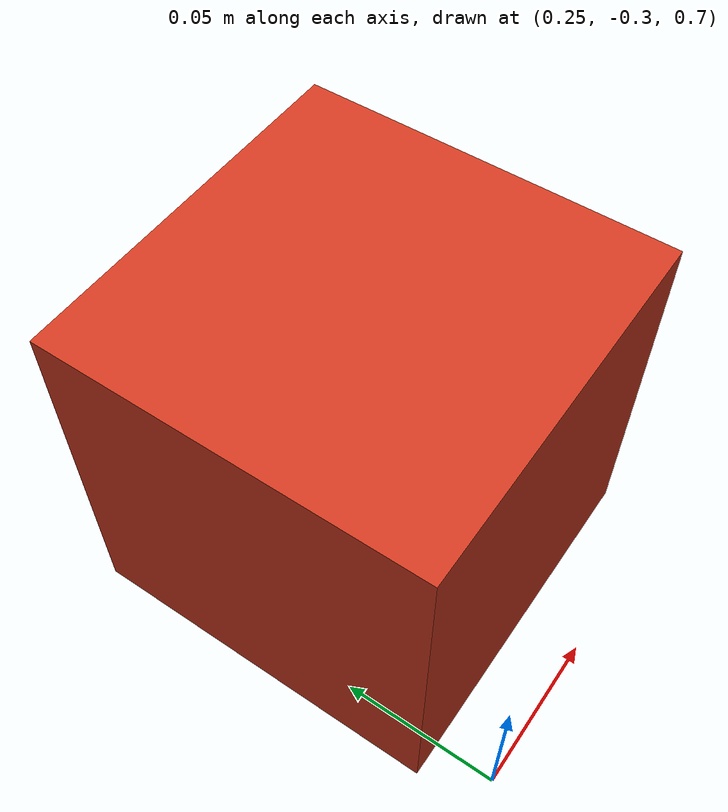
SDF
<?xml version='1.0' encoding='utf-8'?>
<sdf version="1.6">
  <world name="static_box_blocked_goal">
    <physics type="ode">
      <real_time_update_rate>1000.0</real_time_update_rate>
      <max_step_size>0.001</max_step_size>
      <real_time_factor>1.0</real_time_factor>
    </physics>
    <include>
      <uri>model://sun</uri>
    </include>
    <include>
      <uri>model://ground_plane</uri>
    </include>
    <model name="care_static_box">
      <static>true</static>
      <pose>0.3032182246999996 -0.21918383478261397 0.7475033464931528 0 0 0</pose>
      <link name="box_link">
        <collision name="collision">
          <geometry>
            <box>
              <size>0.12 0.12 0.12</size>
            </box>
          </geometry>
          <surface>
            <contact>
              <collide_without_contact>false</collide_without_contact>
            </contact>
          </surface>
        </collision>
        <visual name="visual">
          <geometry>
            <box>
              <size>0.12 0.12 0.12</size>
            </box>
          </geometry>
          <material>
            <ambient>0.8 0.22 0.12 1</ambient>
            <diffuse>0.8 0.22 0.12 1</diffuse>
          </material>
        </visual>
        <sensor name="static_box_contacts" type="contact">
          <always_on>true</always_on>
          <update_rate>100</update_rate>
          <contact>
            <collision>collision</collision>
          </contact>
          <plugin name="box_contact_ros" filename="libgazebo_ros_bumper.so">
            <bumperTopicName>/care_planner/static_box/contacts</bumperTopicName>
            <frameName>world</frameName>
          </plugin>
        </sensor>
      </link>
    </model>
  </world>
</sdf>
